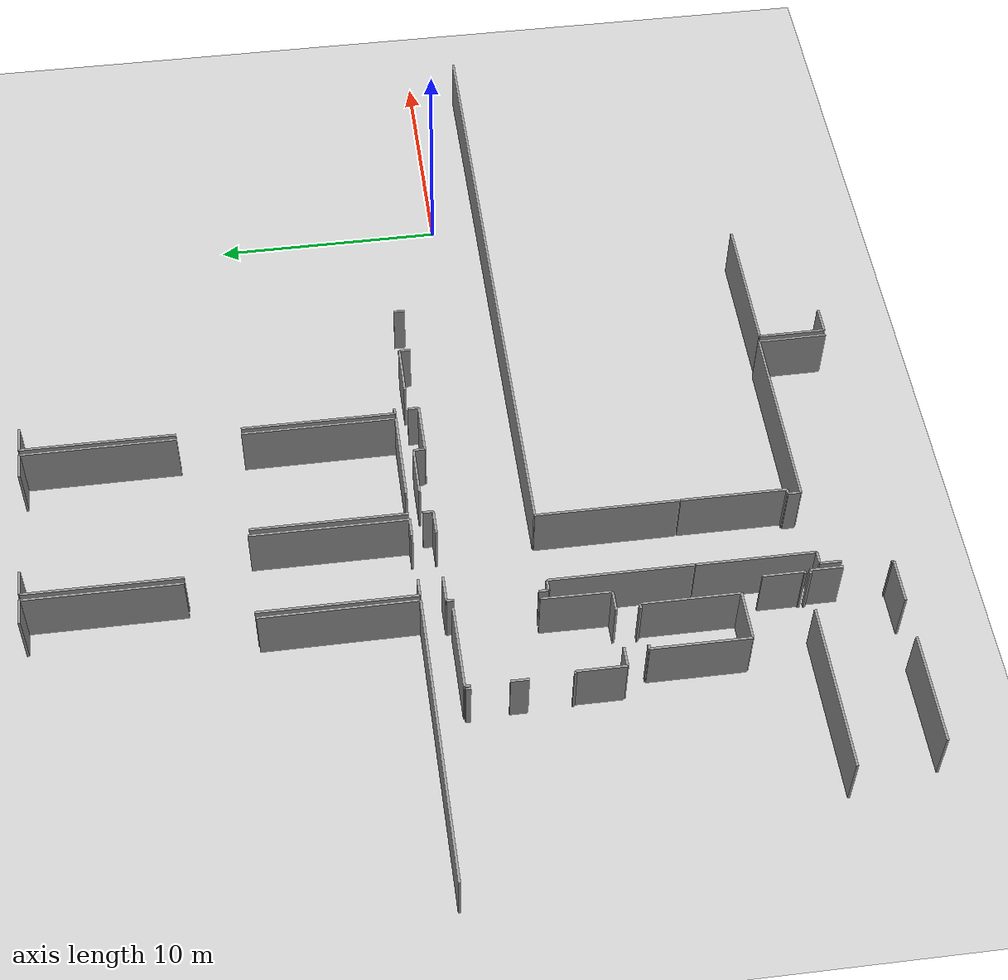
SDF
<sdf version="1.6">
 <world name="default">
  <model name="ground_plane">
   <static>1</static>
   <link name="link">
    <collision name="collision">
     <geometry><plane><normal>0 0 1</normal><size>100 100</size></plane></geometry>
     <surface><friction><ode><mu>100</mu><mu2>50</mu2></ode></friction></surface>
    </collision>
    <visual name="visual">
     <cast_shadows>0</cast_shadows>
     <geometry><plane><normal>0 0 1</normal><size>100 100</size></plane></geometry>
     <material>
      <script><uri>file://media/materials/scripts/gazebo.material</uri><name>Gazebo/Grey</name></script>
     </material>
    </visual>
   </link>
  </model>
  <model name="50045233">
   <static>1</static>
   <link name="Wall_24">
    <collision name="Wall_24_Collision">
     <geometry><box><size>6.72009136766 0.1 2.5</size></box></geometry>
     <pose>3.36004568383 0 1.25 0 0 0</pose>
    </collision>
    <visual name="Wall_24_Visual">
     <pose>3.36004568383 0 1.25 0 0 0</pose>
     <geometry><box><size>6.72009136766 0.1 2.5</size></box></geometry>
     <material>
      <script><uri>file://media/materials/scripts/gazebo.material</uri><name>Gazebo/Grey</name></script>
      <ambient>1 1 1 1</ambient>
     </material>
    </visual>
    <pose>28.5239681482 -9.3810475556 0 0 0 -1.57079632679</pose>
   </link>
   <link name="Wall_25">
    <collision name="Wall_25_Collision">
     <geometry><box><size>0.815075663843 0.1 2.5</size></box></geometry>
     <pose>0.407537831922 0 1.25 0 0 0</pose>
    </collision>
    <visual name="Wall_25_Visual">
     <pose>0.407537831922 0 1.25 0 0 0</pose>
     <geometry><box><size>0.815075663843 0.1 2.5</size></box></geometry>
     <material>
      <script><uri>file://media/materials/scripts/gazebo.material</uri><name>Gazebo/Grey</name></script>
      <ambient>1 1 1 1</ambient>
     </material>
    </visual>
    <pose>28.5239681482 -16.1011389233 0 0 0 3.14159265359</pose>
   </link>
   <link name="Wall_26">
    <collision name="Wall_26_Collision">
     <geometry><box><size>0.767615240633 0.1 2.5</size></box></geometry>
     <pose>0.383807620317 0 1.25 0 0 0</pose>
    </collision>
    <visual name="Wall_26_Visual">
     <pose>0.383807620317 0 1.25 0 0 0</pose>
     <geometry><box><size>0.767615240633 0.1 2.5</size></box></geometry>
     <material>
      <script><uri>file://media/materials/scripts/gazebo.material</uri><name>Gazebo/Grey</name></script>
      <ambient>1 1 1 1</ambient>
     </material>
    </visual>
    <pose>25.4801560864 -16.1011389233 0 0 0 3.14159265359</pose>
   </link>
   <link name="Wall_27">
    <collision name="Wall_27_Collision">
     <geometry><box><size>6.68811268678 0.1 2.5</size></box></geometry>
     <pose>3.34405634339 0 1.25 0 0 0</pose>
    </collision>
    <visual name="Wall_27_Visual">
     <pose>3.34405634339 0 1.25 0 0 0</pose>
     <geometry><box><size>6.68811268678 0.1 2.5</size></box></geometry>
     <material>
      <script><uri>file://media/materials/scripts/gazebo.material</uri><name>Gazebo/Grey</name></script>
      <ambient>1 1 1 1</ambient>
     </material>
    </visual>
    <pose>24.7125408458 -16.1011389233 0 0 0 1.57079632679</pose>
   </link>
   <link name="Wall_34">
    <collision name="Wall_34_Collision">
     <geometry><box><size>1.11151295961 0.1 2.5</size></box></geometry>
     <pose>0.555756479807 0 1.25 0 0 0</pose>
    </collision>
    <visual name="Wall_34_Visual">
     <pose>0.555756479807 0 1.25 0 0 0</pose>
     <geometry><box><size>1.11151295961 0.1 2.5</size></box></geometry>
     <material>
      <script><uri>file://media/materials/scripts/gazebo.material</uri><name>Gazebo/Grey</name></script>
      <ambient>1 1 1 1</ambient>
     </material>
    </visual>
    <pose>25.369119 -0.0153548428032 0 0 0 0.0</pose>
   </link>
   <link name="Wall_35">
    <collision name="Wall_35_Collision">
     <geometry><box><size>6.64636305243 0.1 2.5</size></box></geometry>
     <pose>3.32318152622 0 1.25 0 0 0</pose>
    </collision>
    <visual name="Wall_35_Visual">
     <pose>3.32318152622 0 1.25 0 0 0</pose>
     <geometry><box><size>6.64636305243 0.1 2.5</size></box></geometry>
     <material>
      <script><uri>file://media/materials/scripts/gazebo.material</uri><name>Gazebo/Grey</name></script>
      <ambient>1 1 1 1</ambient>
     </material>
    </visual>
    <pose>26.4806319596 -0.0153548428032 0 0 0 -1.57049083754</pose>
   </link>
   <link name="Wall_36">
    <collision name="Wall_36_Collision">
     <geometry><box><size>6.66260588179 0.1 2.5</size></box></geometry>
     <pose>3.3313029409 0 1.25 0 0 0</pose>
    </collision>
    <visual name="Wall_36_Visual">
     <pose>3.3313029409 0 1.25 0 0 0</pose>
     <geometry><box><size>6.66260588179 0.1 2.5</size></box></geometry>
     <material>
      <script><uri>file://media/materials/scripts/gazebo.material</uri><name>Gazebo/Grey</name></script>
      <ambient>1 1 1 1</ambient>
     </material>
    </visual>
    <pose>26.7620951112 -6.68747818914 0 0 0 1.57079632679</pose>
   </link>
   <link name="Wall_37">
    <collision name="Wall_37_Collision">
     <geometry><box><size>1.1068176771 0.1 2.5</size></box></geometry>
     <pose>0.553408838552 0 1.25 0 0 0</pose>
    </collision>
    <visual name="Wall_37_Visual">
     <pose>0.553408838552 0 1.25 0 0 0</pose>
     <geometry><box><size>1.1068176771 0.1 2.5</size></box></geometry>
     <material>
      <script><uri>file://media/materials/scripts/gazebo.material</uri><name>Gazebo/Grey</name></script>
      <ambient>1 1 1 1</ambient>
     </material>
    </visual>
    <pose>26.7620951112 -0.0248723073507 0 0 0 0.0</pose>
   </link>
   <link name="Wall_38">
    <collision name="Wall_38_Collision">
     <geometry><box><size>1.14970971733 0.1 2.5</size></box></geometry>
     <pose>0.574854858666 0 1.25 0 0 0</pose>
    </collision>
    <visual name="Wall_38_Visual">
     <pose>0.574854858666 0 1.25 0 0 0</pose>
     <geometry><box><size>1.14970971733 0.1 2.5</size></box></geometry>
     <material>
      <script><uri>file://media/materials/scripts/gazebo.material</uri><name>Gazebo/Grey</name></script>
      <ambient>1 1 1 1</ambient>
     </material>
    </visual>
    <pose>32.7683766378 -0.0248723073507 0 0 0 0.0</pose>
   </link>
   <link name="Wall_39">
    <collision name="Wall_39_Collision">
     <geometry><box><size>6.66267148961 0.1 2.5</size></box></geometry>
     <pose>3.33133574481 0 1.25 0 0 0</pose>
    </collision>
    <visual name="Wall_39_Visual">
     <pose>3.33133574481 0 1.25 0 0 0</pose>
     <geometry><box><size>6.66267148961 0.1 2.5</size></box></geometry>
     <material>
      <script><uri>file://media/materials/scripts/gazebo.material</uri><name>Gazebo/Grey</name></script>
      <ambient>1 1 1 1</ambient>
     </material>
    </visual>
    <pose>33.9180863551 -0.0248723073507 0 0 0 -1.56635851428</pose>
   </link>
   <link name="Wall_40">
    <collision name="Wall_40_Collision">
     <geometry><box><size>6.66019479077 0.1 2.5</size></box></geometry>
     <pose>3.33009739539 0 1.25 0 0 0</pose>
    </collision>
    <visual name="Wall_40_Visual">
     <pose>3.33009739539 0 1.25 0 0 0</pose>
     <geometry><box><size>6.66019479077 0.1 2.5</size></box></geometry>
     <material>
      <script><uri>file://media/materials/scripts/gazebo.material</uri><name>Gazebo/Grey</name></script>
      <ambient>1 1 1 1</ambient>
     </material>
    </visual>
    <pose>34.1938390279 -6.67593033216 0 0 0 1.57079632679</pose>
   </link>
   <link name="Wall_41">
    <collision name="Wall_41_Collision">
     <geometry><box><size>1.11874623267 0.1 2.5</size></box></geometry>
     <pose>0.559373116335 0 1.25 0 0 0</pose>
    </collision>
    <visual name="Wall_41_Visual">
     <pose>0.559373116335 0 1.25 0 0 0</pose>
     <geometry><box><size>1.11874623267 0.1 2.5</size></box></geometry>
     <material>
      <script><uri>file://media/materials/scripts/gazebo.material</uri><name>Gazebo/Grey</name></script>
      <ambient>1 1 1 1</ambient>
     </material>
    </visual>
    <pose>34.1938390279 -0.0157355413851 0 0 0 0.0</pose>
   </link>
   <link name="Wall_99">
    <collision name="Wall_99_Collision">
     <geometry><box><size>0.250245867834 0.1 2.5</size></box></geometry>
     <pose>0.125122933917 0 1.25 0 0 0</pose>
    </collision>
    <visual name="Wall_99_Visual">
     <pose>0.125122933917 0 1.25 0 0 0</pose>
     <geometry><box><size>0.250245867834 0.1 2.5</size></box></geometry>
     <material>
      <script><uri>file://media/materials/scripts/gazebo.material</uri><name>Gazebo/Grey</name></script>
      <ambient>1 1 1 1</ambient>
     </material>
    </visual>
    <pose>34.4397703119 -16.0960629422 0 0 0 3.14159265359</pose>
   </link>
   <link name="Wall_100">
    <collision name="Wall_100_Collision">
     <geometry><box><size>6.63963706735 0.1 2.5</size></box></geometry>
     <pose>3.31981853368 0 1.25 0 0 0</pose>
    </collision>
    <visual name="Wall_100_Visual">
     <pose>3.31981853368 0 1.25 0 0 0</pose>
     <geometry><box><size>6.63963706735 0.1 2.5</size></box></geometry>
     <material>
      <script><uri>file://media/materials/scripts/gazebo.material</uri><name>Gazebo/Grey</name></script>
      <ambient>1 1 1 1</ambient>
     </material>
    </visual>
    <pose>34.189524444 -16.0960629422 0 0 0 1.57079632679</pose>
   </link>
   <link name="Wall_102">
    <collision name="Wall_102_Collision">
     <geometry><box><size>4.03261317852 0.1 2.5</size></box></geometry>
     <pose>2.01630658926 0 1.25 0 0 0</pose>
    </collision>
    <visual name="Wall_102_Visual">
     <pose>2.01630658926 0 1.25 0 0 0</pose>
     <geometry><box><size>4.03261317852 0.1 2.5</size></box></geometry>
     <material>
      <script><uri>file://media/materials/scripts/gazebo.material</uri><name>Gazebo/Grey</name></script>
      <ambient>1 1 1 1</ambient>
     </material>
    </visual>
    <pose>33.9194822499 -16.1016465214 0 0 0 3.14159265359</pose>
   </link>
   <link name="Wall_103">
    <collision name="Wall_103_Collision">
     <geometry><box><size>6.65093112528 0.1 2.5</size></box></geometry>
     <pose>3.32546556264 0 1.25 0 0 0</pose>
    </collision>
    <visual name="Wall_103_Visual">
     <pose>3.32546556264 0 1.25 0 0 0</pose>
     <geometry><box><size>6.65093112528 0.1 2.5</size></box></geometry>
     <material>
      <script><uri>file://media/materials/scripts/gazebo.material</uri><name>Gazebo/Grey</name></script>
      <ambient>1 1 1 1</ambient>
     </material>
    </visual>
    <pose>28.8277656166 -16.1016465214 0 0 0 1.57079632679</pose>
   </link>
   <link name="Wall_104">
    <collision name="Wall_104_Collision">
     <geometry><box><size>6.65094685847 0.1 2.5</size></box></geometry>
     <pose>3.32547342924 0 1.25 0 0 0</pose>
    </collision>
    <visual name="Wall_104_Visual">
     <pose>3.32547342924 0 1.25 0 0 0</pose>
     <geometry><box><size>6.65094685847 0.1 2.5</size></box></geometry>
     <material>
      <script><uri>file://media/materials/scripts/gazebo.material</uri><name>Gazebo/Grey</name></script>
      <ambient>1 1 1 1</ambient>
     </material>
    </visual>
    <pose>33.9050157038 -9.45071539609 0 0 0 -1.56862121431</pose>
   </link>
   <link name="Wall_105">
    <collision name="Wall_105_Collision">
     <geometry><box><size>12.5843723232 0.1 2.5</size></box></geometry>
     <pose>6.29218616161 0 1.25 0 0 0</pose>
    </collision>
    <visual name="Wall_105_Visual">
     <pose>6.29218616161 0 1.25 0 0 0</pose>
     <geometry><box><size>12.5843723232 0.1 2.5</size></box></geometry>
     <material>
      <script><uri>file://media/materials/scripts/gazebo.material</uri><name>Gazebo/Grey</name></script>
      <ambient>1 1 1 1</ambient>
     </material>
    </visual>
    <pose>24.4822182037 -16.1011389233 0 0 0 3.14159265359</pose>
   </link>
   <link name="Wall_107">
    <collision name="Wall_107_Collision">
     <geometry><box><size>6.64418401277 0.1 2.5</size></box></geometry>
     <pose>3.32209200638 0 1.25 0 0 0</pose>
    </collision>
    <visual name="Wall_107_Visual">
     <pose>3.32209200638 0 1.25 0 0 0</pose>
     <geometry><box><size>6.64418401277 0.1 2.5</size></box></geometry>
     <material>
      <script><uri>file://media/materials/scripts/gazebo.material</uri><name>Gazebo/Grey</name></script>
      <ambient>1 1 1 1</ambient>
     </material>
    </visual>
    <pose>24.4447828432 -9.45706037245 0 0 0 -1.56516199178</pose>
   </link>
   <link name="Wall_162">
    <collision name="Wall_162_Collision">
     <geometry><box><size>0.176771041528 0.1 2.5</size></box></geometry>
     <pose>0.0883855207639 0 1.25 0 0 0</pose>
    </collision>
    <visual name="Wall_162_Visual">
     <pose>0.0883855207639 0 1.25 0 0 0</pose>
     <geometry><box><size>0.176771041528 0.1 2.5</size></box></geometry>
     <material>
      <script><uri>file://media/materials/scripts/gazebo.material</uri><name>Gazebo/Grey</name></script>
      <ambient>1 1 1 1</ambient>
     </material>
    </visual>
    <pose>23.7904888804 -32.0281716951 0 0 0 0.0</pose>
   </link>
   <link name="Wall_163">
    <collision name="Wall_163_Collision">
     <geometry><box><size>1.39094571873 0.1 2.5</size></box></geometry>
     <pose>0.695472859364 0 1.25 0 0 0</pose>
    </collision>
    <visual name="Wall_163_Visual">
     <pose>0.695472859364 0 1.25 0 0 0</pose>
     <geometry><box><size>1.39094571873 0.1 2.5</size></box></geometry>
     <material>
      <script><uri>file://media/materials/scripts/gazebo.material</uri><name>Gazebo/Grey</name></script>
      <ambient>1 1 1 1</ambient>
     </material>
    </visual>
    <pose>23.967259922 -32.0281716951 0 0 0 -1.57079632679</pose>
   </link>
   <link name="Wall_164">
    <collision name="Wall_164_Collision">
     <geometry><box><size>0.0944132483107 0.1 2.5</size></box></geometry>
     <pose>0.0472066241553 0 1.25 0 0 0</pose>
    </collision>
    <visual name="Wall_164_Visual">
     <pose>0.0472066241553 0 1.25 0 0 0</pose>
     <geometry><box><size>0.0944132483107 0.1 2.5</size></box></geometry>
     <material>
      <script><uri>file://media/materials/scripts/gazebo.material</uri><name>Gazebo/Grey</name></script>
      <ambient>1 1 1 1</ambient>
     </material>
    </visual>
    <pose>23.967259922 -35.4298404238 0 0 0 -1.57079632679</pose>
   </link>
   <link name="Wall_165">
    <collision name="Wall_165_Collision">
     <geometry><box><size>1.93953237524 0.1 2.5</size></box></geometry>
     <pose>0.969766187621 0 1.25 0 0 0</pose>
    </collision>
    <visual name="Wall_165_Visual">
     <pose>0.969766187621 0 1.25 0 0 0</pose>
     <geometry><box><size>1.93953237524 0.1 2.5</size></box></geometry>
     <material>
      <script><uri>file://media/materials/scripts/gazebo.material</uri><name>Gazebo/Grey</name></script>
      <ambient>1 1 1 1</ambient>
     </material>
    </visual>
    <pose>23.967259922 -35.5242536722 0 0 0 3.14159265359</pose>
   </link>
   <link name="Wall_166">
    <collision name="Wall_166_Collision">
     <geometry><box><size>4.74782065096 0.1 2.5</size></box></geometry>
     <pose>2.37391032548 0 1.25 0 0 0</pose>
    </collision>
    <visual name="Wall_166_Visual">
     <pose>2.37391032548 0 1.25 0 0 0</pose>
     <geometry><box><size>4.74782065096 0.1 2.5</size></box></geometry>
     <material>
      <script><uri>file://media/materials/scripts/gazebo.material</uri><name>Gazebo/Grey</name></script>
      <ambient>1 1 1 1</ambient>
     </material>
    </visual>
    <pose>20.271945687 -35.5242536722 0 0 0 -3.14073735899</pose>
   </link>
   <link name="Wall_167">
    <collision name="Wall_167_Collision">
     <geometry><box><size>7.19558389645 0.1 2.5</size></box></geometry>
     <pose>3.59779194822 0 1.25 0 0 0</pose>
    </collision>
    <visual name="Wall_167_Visual">
     <pose>3.59779194822 0 1.25 0 0 0</pose>
     <geometry><box><size>7.19558389645 0.1 2.5</size></box></geometry>
     <material>
      <script><uri>file://media/materials/scripts/gazebo.material</uri><name>Gazebo/Grey</name></script>
      <ambient>1 1 1 1</ambient>
     </material>
    </visual>
    <pose>22.0439706862 -31.8021636369 0 0 0 3.14159265359</pose>
   </link>
   <link name="Wall_170">
    <collision name="Wall_170_Collision">
     <geometry><box><size>1.74804098855 0.1 2.5</size></box></geometry>
     <pose>0.874020494274 0 1.25 0 0 0</pose>
    </collision>
    <visual name="Wall_170_Visual">
     <pose>0.874020494274 0 1.25 0 0 0</pose>
     <geometry><box><size>1.74804098855 0.1 2.5</size></box></geometry>
     <material>
      <script><uri>file://media/materials/scripts/gazebo.material</uri><name>Gazebo/Grey</name></script>
      <ambient>1 1 1 1</ambient>
     </material>
    </visual>
    <pose>23.9181498049 -30.0386409061 0 0 0 -1.57079632679</pose>
   </link>
   <link name="Wall_171">
    <collision name="Wall_171_Collision">
     <geometry><box><size>0.106709449569 0.1 2.5</size></box></geometry>
     <pose>0.0533547247844 0 1.25 0 0 0</pose>
    </collision>
    <visual name="Wall_171_Visual">
     <pose>0.0533547247844 0 1.25 0 0 0</pose>
     <geometry><box><size>0.106709449569 0.1 2.5</size></box></geometry>
     <material>
      <script><uri>file://media/materials/scripts/gazebo.material</uri><name>Gazebo/Grey</name></script>
      <ambient>1 1 1 1</ambient>
     </material>
    </visual>
    <pose>23.9181498049 -31.7866818946 0 0 0 -2.99599564951</pose>
   </link>
   <link name="Wall_191">
    <collision name="Wall_191_Collision">
     <geometry><box><size>4.18019732876 0.1 2.5</size></box></geometry>
     <pose>2.09009866438 0 1.25 0 0 0</pose>
    </collision>
    <visual name="Wall_191_Visual">
     <pose>2.09009866438 0 1.25 0 0 0</pose>
     <geometry><box><size>4.18019732876 0.1 2.5</size></box></geometry>
     <material>
      <script><uri>file://media/materials/scripts/gazebo.material</uri><name>Gazebo/Grey</name></script>
      <ambient>1 1 1 1</ambient>
     </material>
    </visual>
    <pose>21.048316995 -29.0377843343 0 0 0 1.57079632679</pose>
   </link>
   <link name="Wall_192">
    <collision name="Wall_192_Collision">
     <geometry><box><size>0.181593223565 0.1 2.5</size></box></geometry>
     <pose>0.0907966117826 0 1.25 0 0 0</pose>
    </collision>
    <visual name="Wall_192_Visual">
     <pose>0.0907966117826 0 1.25 0 0 0</pose>
     <geometry><box><size>0.181593223565 0.1 2.5</size></box></geometry>
     <material>
      <script><uri>file://media/materials/scripts/gazebo.material</uri><name>Gazebo/Grey</name></script>
      <ambient>1 1 1 1</ambient>
     </material>
    </visual>
    <pose>21.048316995 -24.8575870055 0 0 0 0.0</pose>
   </link>
   <link name="Wall_193">
    <collision name="Wall_193_Collision">
     <geometry><box><size>0.225246660956 0.1 2.5</size></box></geometry>
     <pose>0.112623330478 0 1.25 0 0 0</pose>
    </collision>
    <visual name="Wall_193_Visual">
     <pose>0.112623330478 0 1.25 0 0 0</pose>
     <geometry><box><size>0.225246660956 0.1 2.5</size></box></geometry>
     <material>
      <script><uri>file://media/materials/scripts/gazebo.material</uri><name>Gazebo/Grey</name></script>
      <ambient>1 1 1 1</ambient>
     </material>
    </visual>
    <pose>22.9836616859 -24.8575870055 0 0 0 0.0</pose>
   </link>
   <link name="Wall_194">
    <collision name="Wall_194_Collision">
     <geometry><box><size>4.16560388313 0.1 2.5</size></box></geometry>
     <pose>2.08280194156 0 1.25 0 0 0</pose>
    </collision>
    <visual name="Wall_194_Visual">
     <pose>2.08280194156 0 1.25 0 0 0</pose>
     <geometry><box><size>4.16560388313 0.1 2.5</size></box></geometry>
     <material>
      <script><uri>file://media/materials/scripts/gazebo.material</uri><name>Gazebo/Grey</name></script>
      <ambient>1 1 1 1</ambient>
     </material>
    </visual>
    <pose>23.2089083468 -24.8575870055 0 0 0 -1.57079632679</pose>
   </link>
   <link name="Wall_195">
    <collision name="Wall_195_Collision">
     <geometry><box><size>2.16064063604 0.1 2.5</size></box></geometry>
     <pose>1.08032031802 0 1.25 0 0 0</pose>
    </collision>
    <visual name="Wall_195_Visual">
     <pose>1.08032031802 0 1.25 0 0 0</pose>
     <geometry><box><size>2.16064063604 0.1 2.5</size></box></geometry>
     <material>
      <script><uri>file://media/materials/scripts/gazebo.material</uri><name>Gazebo/Grey</name></script>
      <ambient>1 1 1 1</ambient>
     </material>
    </visual>
    <pose>23.2089083468 -29.0231908886 0 0 0 -3.13483838064</pose>
   </link>
   <link name="Wall_196">
    <collision name="Wall_196_Collision">
     <geometry><box><size>0.887915992513 0.1 2.5</size></box></geometry>
     <pose>0.443957996256 0 1.25 0 0 0</pose>
    </collision>
    <visual name="Wall_196_Visual">
     <pose>0.443957996256 0 1.25 0 0 0</pose>
     <geometry><box><size>0.887915992513 0.1 2.5</size></box></geometry>
     <material>
      <script><uri>file://media/materials/scripts/gazebo.material</uri><name>Gazebo/Grey</name></script>
      <ambient>1 1 1 1</ambient>
     </material>
    </visual>
    <pose>23.9170077091 -23.8576187304 0 0 0 3.14159265359</pose>
   </link>
   <link name="Wall_197">
    <collision name="Wall_197_Collision">
     <geometry><box><size>0.873195647346 0.1 2.5</size></box></geometry>
     <pose>0.436597823673 0 1.25 0 0 0</pose>
    </collision>
    <visual name="Wall_197_Visual">
     <pose>0.436597823673 0 1.25 0 0 0</pose>
     <geometry><box><size>0.873195647346 0.1 2.5</size></box></geometry>
     <material>
      <script><uri>file://media/materials/scripts/gazebo.material</uri><name>Gazebo/Grey</name></script>
      <ambient>1 1 1 1</ambient>
     </material>
    </visual>
    <pose>21.2485644491 -23.8576187304 0 0 0 3.14159265359</pose>
   </link>
   <link name="Wall_198">
    <collision name="Wall_198_Collision">
     <geometry><box><size>2.08559373116 0.1 2.5</size></box></geometry>
     <pose>1.04279686558 0 1.25 0 0 0</pose>
    </collision>
    <visual name="Wall_198_Visual">
     <pose>1.04279686558 0 1.25 0 0 0</pose>
     <geometry><box><size>2.08559373116 0.1 2.5</size></box></geometry>
     <material>
      <script><uri>file://media/materials/scripts/gazebo.material</uri><name>Gazebo/Grey</name></script>
      <ambient>1 1 1 1</ambient>
     </material>
    </visual>
    <pose>20.3753688018 -23.8576187304 0 0 0 1.57079632679</pose>
   </link>
   <link name="Wall_199">
    <collision name="Wall_199_Collision">
     <geometry><box><size>0.128422321627 0.1 2.5</size></box></geometry>
     <pose>0.0642111608134 0 1.25 0 0 0</pose>
    </collision>
    <visual name="Wall_199_Visual">
     <pose>0.0642111608134 0 1.25 0 0 0</pose>
     <geometry><box><size>0.128422321627 0.1 2.5</size></box></geometry>
     <material>
      <script><uri>file://media/materials/scripts/gazebo.material</uri><name>Gazebo/Grey</name></script>
      <ambient>1 1 1 1</ambient>
     </material>
    </visual>
    <pose>20.3753688018 -21.7720249992 0 0 0 3.14159265359</pose>
   </link>
   <link name="Wall_200">
    <collision name="Wall_200_Collision">
     <geometry><box><size>0.754544589321 0.1 2.5</size></box></geometry>
     <pose>0.377272294661 0 1.25 0 0 0</pose>
    </collision>
    <visual name="Wall_200_Visual">
     <pose>0.377272294661 0 1.25 0 0 0</pose>
     <geometry><box><size>0.754544589321 0.1 2.5</size></box></geometry>
     <material>
      <script><uri>file://media/materials/scripts/gazebo.material</uri><name>Gazebo/Grey</name></script>
      <ambient>1 1 1 1</ambient>
     </material>
    </visual>
    <pose>20.2469464801 -19.9175153073 0 0 0 1.57079632679</pose>
   </link>
   <link name="Wall_201">
    <collision name="Wall_201_Collision">
     <geometry><box><size>0.24669268107 0.1 2.5</size></box></geometry>
     <pose>0.123346340535 0 1.25 0 0 0</pose>
    </collision>
    <visual name="Wall_201_Visual">
     <pose>0.123346340535 0 1.25 0 0 0</pose>
     <geometry><box><size>0.24669268107 0.1 2.5</size></box></geometry>
     <material>
      <script><uri>file://media/materials/scripts/gazebo.material</uri><name>Gazebo/Grey</name></script>
      <ambient>1 1 1 1</ambient>
     </material>
    </visual>
    <pose>20.2469464801 -17.5957615558 0 0 0 1.57079632679</pose>
   </link>
   <link name="Wall_202">
    <collision name="Wall_202_Collision">
     <geometry><box><size>3.70318200565 0.1 2.5</size></box></geometry>
     <pose>1.85159100282 0 1.25 0 0 0</pose>
    </collision>
    <visual name="Wall_202_Visual">
     <pose>1.85159100282 0 1.25 0 0 0</pose>
     <geometry><box><size>3.70318200565 0.1 2.5</size></box></geometry>
     <material>
      <script><uri>file://media/materials/scripts/gazebo.material</uri><name>Gazebo/Grey</name></script>
      <ambient>1 1 1 1</ambient>
     </material>
    </visual>
    <pose>20.2469464801 -17.3490688747 0 0 0 0.0</pose>
   </link>
   <link name="Wall_203">
    <collision name="Wall_203_Collision">
     <geometry><box><size>2.96861851203 0.1 2.5</size></box></geometry>
     <pose>1.48430925601 0 1.25 0 0 0</pose>
    </collision>
    <visual name="Wall_203_Visual">
     <pose>1.48430925601 0 1.25 0 0 0</pose>
     <geometry><box><size>2.96861851203 0.1 2.5</size></box></geometry>
     <material>
      <script><uri>file://media/materials/scripts/gazebo.material</uri><name>Gazebo/Grey</name></script>
      <ambient>1 1 1 1</ambient>
     </material>
    </visual>
    <pose>23.9501284858 -20.8891849878 0 0 0 -1.58195352455</pose>
   </link>
   <link name="Wall_208">
    <collision name="Wall_208_Collision">
     <geometry><box><size>0.2194092827 0.1 2.5</size></box></geometry>
     <pose>0.10970464135 0 1.25 0 0 0</pose>
    </collision>
    <visual name="Wall_208_Visual">
     <pose>0.10970464135 0 1.25 0 0 0</pose>
     <geometry><box><size>0.2194092827 0.1 2.5</size></box></geometry>
     <material>
      <script><uri>file://media/materials/scripts/gazebo.material</uri><name>Gazebo/Grey</name></script>
      <ambient>1 1 1 1</ambient>
     </material>
    </visual>
    <pose>20.1106563878 -17.3689921005 0 0 0 -1.57079632679</pose>
   </link>
   <link name="Wall_312">
    <collision name="Wall_312_Collision">
     <geometry><box><size>6.10272516735 0.1 2.5</size></box></geometry>
     <pose>3.05136258367 0 1.25 0 0 0</pose>
    </collision>
    <visual name="Wall_312_Visual">
     <pose>3.05136258367 0 1.25 0 0 0</pose>
     <geometry><box><size>6.10272516735 0.1 2.5</size></box></geometry>
     <material>
      <script><uri>file://media/materials/scripts/gazebo.material</uri><name>Gazebo/Grey</name></script>
      <ambient>1 1 1 1</ambient>
     </material>
    </visual>
    <pose>28.0900986644 -27.3852986898 0 0 0 1.57079632679</pose>
   </link>
   <link name="Wall_313">
    <collision name="Wall_313_Collision">
     <geometry><box><size>27.6017892833 0.1 2.5</size></box></geometry>
     <pose>13.8008946417 0 1.25 0 0 0</pose>
    </collision>
    <visual name="Wall_313_Visual">
     <pose>13.8008946417 0 1.25 0 0 0</pose>
     <geometry><box><size>27.6017892833 0.1 2.5</size></box></geometry>
     <material>
      <script><uri>file://media/materials/scripts/gazebo.material</uri><name>Gazebo/Grey</name></script>
      <ambient>1 1 1 1</ambient>
     </material>
    </visual>
    <pose>28.0900986644 -21.2825735224 0 0 0 0.0</pose>
   </link>
   <link name="Wall_345">
    <collision name="Wall_345_Collision">
     <geometry><box><size>0.482598902319 0.1 2.5</size></box></geometry>
     <pose>0.24129945116 0 1.25 0 0 0</pose>
    </collision>
    <visual name="Wall_345_Visual">
     <pose>0.24129945116 0 1.25 0 0 0</pose>
     <geometry><box><size>0.482598902319 0.1 2.5</size></box></geometry>
     <material>
      <script><uri>file://media/materials/scripts/gazebo.material</uri><name>Gazebo/Grey</name></script>
      <ambient>1 1 1 1</ambient>
     </material>
    </visual>
    <pose>39.9923860284 -16.6526442689 0 0 0 -1.57079632679</pose>
   </link>
   <link name="Wall_347">
    <collision name="Wall_347_Collision">
     <geometry><box><size>0.473208337299 0.1 2.5</size></box></geometry>
     <pose>0.236604168649 0 1.25 0 0 0</pose>
    </collision>
    <visual name="Wall_347_Visual">
     <pose>0.236604168649 0 1.25 0 0 0</pose>
     <geometry><box><size>0.473208337299 0.1 2.5</size></box></geometry>
     <material>
      <script><uri>file://media/materials/scripts/gazebo.material</uri><name>Gazebo/Grey</name></script>
      <ambient>1 1 1 1</ambient>
     </material>
    </visual>
    <pose>37.6833222296 -17.1352431712 0 0 0 1.57079632679</pose>
   </link>
   <link name="Wall_348">
    <collision name="Wall_348_Collision">
     <geometry><box><size>2.22086862726 0.1 2.5</size></box></geometry>
     <pose>1.11043431363 0 1.25 0 0 0</pose>
    </collision>
    <visual name="Wall_348_Visual">
     <pose>1.11043431363 0 1.25 0 0 0</pose>
     <geometry><box><size>2.22086862726 0.1 2.5</size></box></geometry>
     <material>
      <script><uri>file://media/materials/scripts/gazebo.material</uri><name>Gazebo/Grey</name></script>
      <ambient>1 1 1 1</ambient>
     </material>
    </visual>
    <pose>37.6833222296 -16.6620348339 0 0 0 3.14159265359</pose>
   </link>
   <link name="Wall_349">
    <collision name="Wall_349_Collision">
     <geometry><box><size>0.485771390502 0.1 2.5</size></box></geometry>
     <pose>0.242885695251 0 1.25 0 0 0</pose>
    </collision>
    <visual name="Wall_349_Visual">
     <pose>0.242885695251 0 1.25 0 0 0</pose>
     <geometry><box><size>0.485771390502 0.1 2.5</size></box></geometry>
     <material>
      <script><uri>file://media/materials/scripts/gazebo.material</uri><name>Gazebo/Grey</name></script>
      <ambient>1 1 1 1</ambient>
     </material>
    </visual>
    <pose>34.3709907681 -16.6620348339 0 0 0 -1.57079632679</pose>
   </link>
   <link name="Wall_350">
    <collision name="Wall_350_Collision">
     <geometry><box><size>2.26502966276 0.1 2.5</size></box></geometry>
     <pose>1.13251483138 0 1.25 0 0 0</pose>
    </collision>
    <visual name="Wall_350_Visual">
     <pose>1.13251483138 0 1.25 0 0 0</pose>
     <geometry><box><size>2.26502966276 0.1 2.5</size></box></geometry>
     <material>
      <script><uri>file://media/materials/scripts/gazebo.material</uri><name>Gazebo/Grey</name></script>
      <ambient>1 1 1 1</ambient>
     </material>
    </visual>
    <pose>34.3709907681 -17.1478062244 0 0 0 3.14159265359</pose>
   </link>
   <link name="Wall_351">
    <collision name="Wall_351_Collision">
     <geometry><box><size>0.479426414137 0.1 2.5</size></box></geometry>
     <pose>0.239713207068 0 1.25 0 0 0</pose>
    </collision>
    <visual name="Wall_351_Visual">
     <pose>0.239713207068 0 1.25 0 0 0</pose>
     <geometry><box><size>0.479426414137 0.1 2.5</size></box></geometry>
     <material>
      <script><uri>file://media/materials/scripts/gazebo.material</uri><name>Gazebo/Grey</name></script>
      <ambient>1 1 1 1</ambient>
     </material>
    </visual>
    <pose>32.1059611053 -17.1478062244 0 0 0 1.57079632679</pose>
   </link>
   <link name="Wall_352">
    <collision name="Wall_352_Collision">
     <geometry><box><size>2.2145236509 0.1 2.5</size></box></geometry>
     <pose>1.10726182545 0 1.25 0 0 0</pose>
    </collision>
    <visual name="Wall_352_Visual">
     <pose>1.10726182545 0 1.25 0 0 0</pose>
     <geometry><box><size>2.2145236509 0.1 2.5</size></box></geometry>
     <material>
      <script><uri>file://media/materials/scripts/gazebo.material</uri><name>Gazebo/Grey</name></script>
      <ambient>1 1 1 1</ambient>
     </material>
    </visual>
    <pose>32.1059611053 -16.6683798103 0 0 0 3.14159265359</pose>
   </link>
   <link name="Wall_353">
    <collision name="Wall_353_Collision">
     <geometry><box><size>0.454300307731 0.1 2.5</size></box></geometry>
     <pose>0.227150153866 0 1.25 0 0 0</pose>
    </collision>
    <visual name="Wall_353_Visual">
     <pose>0.227150153866 0 1.25 0 0 0</pose>
     <geometry><box><size>0.454300307731 0.1 2.5</size></box></geometry>
     <material>
      <script><uri>file://media/materials/scripts/gazebo.material</uri><name>Gazebo/Grey</name></script>
      <ambient>1 1 1 1</ambient>
     </material>
    </visual>
    <pose>28.8063195965 -16.6683798103 0 0 0 -1.57079632679</pose>
   </link>
   <link name="Wall_354">
    <collision name="Wall_354_Collision">
     <geometry><box><size>1.0914628343 0.1 2.5</size></box></geometry>
     <pose>0.54573141715 0 1.25 0 0 0</pose>
    </collision>
    <visual name="Wall_354_Visual">
     <pose>0.54573141715 0 1.25 0 0 0</pose>
     <geometry><box><size>1.0914628343 0.1 2.5</size></box></geometry>
     <material>
      <script><uri>file://media/materials/scripts/gazebo.material</uri><name>Gazebo/Grey</name></script>
      <ambient>1 1 1 1</ambient>
     </material>
    </visual>
    <pose>28.8063195965 -17.122680118 0 0 0 3.14159265359</pose>
   </link>
   <link name="Wall_355">
    <collision name="Wall_355_Collision">
     <geometry><box><size>1.18067320199 0.1 2.5</size></box></geometry>
     <pose>0.590336600996 0 1.25 0 0 0</pose>
    </collision>
    <visual name="Wall_355_Visual">
     <pose>0.590336600996 0 1.25 0 0 0</pose>
     <geometry><box><size>1.18067320199 0.1 2.5</size></box></geometry>
     <material>
      <script><uri>file://media/materials/scripts/gazebo.material</uri><name>Gazebo/Grey</name></script>
      <ambient>1 1 1 1</ambient>
     </material>
    </visual>
    <pose>25.4950033311 -17.122680118 0 0 0 3.14159265359</pose>
   </link>
   <link name="Wall_356">
    <collision name="Wall_356_Collision">
     <geometry><box><size>0.312680435265 0.1 2.5</size></box></geometry>
     <pose>0.156340217633 0 1.25 0 0 0</pose>
    </collision>
    <visual name="Wall_356_Visual">
     <pose>0.156340217633 0 1.25 0 0 0</pose>
     <geometry><box><size>0.312680435265 0.1 2.5</size></box></geometry>
     <material>
      <script><uri>file://media/materials/scripts/gazebo.material</uri><name>Gazebo/Grey</name></script>
      <ambient>1 1 1 1</ambient>
     </material>
    </visual>
    <pose>24.3143301291 -17.122680118 0 0 0 -1.57079632679</pose>
   </link>
   <link name="Wall_357">
    <collision name="Wall_357_Collision">
     <geometry><box><size>0.417118746233 0.1 2.5</size></box></geometry>
     <pose>0.208559373116 0 1.25 0 0 0</pose>
    </collision>
    <visual name="Wall_357_Visual">
     <pose>0.208559373116 0 1.25 0 0 0</pose>
     <geometry><box><size>0.417118746233 0.1 2.5</size></box></geometry>
     <material>
      <script><uri>file://media/materials/scripts/gazebo.material</uri><name>Gazebo/Grey</name></script>
      <ambient>1 1 1 1</ambient>
     </material>
    </visual>
    <pose>24.3143301291 -20.8855049015 0 0 0 -1.57079632679</pose>
   </link>
   <link name="Wall_358">
    <collision name="Wall_358_Collision">
     <geometry><box><size>0.488309381048 0.1 2.5</size></box></geometry>
     <pose>0.244154690524 0 1.25 0 0 0</pose>
    </collision>
    <visual name="Wall_358_Visual">
     <pose>0.244154690524 0 1.25 0 0 0</pose>
     <geometry><box><size>0.488309381048 0.1 2.5</size></box></geometry>
     <material>
      <script><uri>file://media/materials/scripts/gazebo.material</uri><name>Gazebo/Grey</name></script>
      <ambient>1 1 1 1</ambient>
     </material>
    </visual>
    <pose>24.3143301291 -21.3026236477 0 0 0 0.0</pose>
   </link>
   <link name="Wall_359">
    <collision name="Wall_359_Collision">
     <geometry><box><size>6.08267784302 0.1 2.5</size></box></geometry>
     <pose>3.04133892151 0 1.25 0 0 0</pose>
    </collision>
    <visual name="Wall_359_Visual">
     <pose>3.04133892151 0 1.25 0 0 0</pose>
     <geometry><box><size>6.08267784302 0.1 2.5</size></box></geometry>
     <material>
      <script><uri>file://media/materials/scripts/gazebo.material</uri><name>Gazebo/Grey</name></script>
      <ambient>1 1 1 1</ambient>
     </material>
    </visual>
    <pose>24.8026395102 -21.3026236477 0 0 0 -1.56983665421</pose>
   </link>
   <link name="Wall_363">
    <collision name="Wall_363_Collision">
     <geometry><box><size>0.910504108372 0.1 2.5</size></box></geometry>
     <pose>0.455252054186 0 1.25 0 0 0</pose>
    </collision>
    <visual name="Wall_363_Visual">
     <pose>0.455252054186 0 1.25 0 0 0</pose>
     <geometry><box><size>0.910504108372 0.1 2.5</size></box></geometry>
     <material>
      <script><uri>file://media/materials/scripts/gazebo.material</uri><name>Gazebo/Grey</name></script>
      <ambient>1 1 1 1</ambient>
     </material>
    </visual>
    <pose>24.2423780971 -33.4059198629 0 0 0 1.57079632679</pose>
   </link>
   <link name="Wall_364">
    <collision name="Wall_364_Collision">
     <geometry><box><size>0.565083595064 0.1 2.5</size></box></geometry>
     <pose>0.282541797532 0 1.25 0 0 0</pose>
    </collision>
    <visual name="Wall_364_Visual">
     <pose>0.282541797532 0 1.25 0 0 0</pose>
     <geometry><box><size>0.565083595064 0.1 2.5</size></box></geometry>
     <material>
      <script><uri>file://media/materials/scripts/gazebo.material</uri><name>Gazebo/Grey</name></script>
      <ambient>1 1 1 1</ambient>
     </material>
    </visual>
    <pose>24.2423780971 -32.4954157546 0 0 0 0.0</pose>
   </link>
   <link name="Wall_365">
    <collision name="Wall_365_Collision">
     <geometry><box><size>5.05098188509 0.1 2.5</size></box></geometry>
     <pose>2.52549094255 0 1.25 0 0 0</pose>
    </collision>
    <visual name="Wall_365_Visual">
     <pose>2.52549094255 0 1.25 0 0 0</pose>
     <geometry><box><size>5.05098188509 0.1 2.5</size></box></geometry>
     <material>
      <script><uri>file://media/materials/scripts/gazebo.material</uri><name>Gazebo/Grey</name></script>
      <ambient>1 1 1 1</ambient>
     </material>
    </visual>
    <pose>24.8074616922 -32.4954157546 0 0 0 1.57079632679</pose>
   </link>
   <link name="Wall_366">
    <collision name="Wall_366_Collision">
     <geometry><box><size>4.53475460804 0.1 2.5</size></box></geometry>
     <pose>2.26737730402 0 1.25 0 0 0</pose>
    </collision>
    <visual name="Wall_366_Visual">
     <pose>2.26737730402 0 1.25 0 0 0</pose>
     <geometry><box><size>4.53475460804 0.1 2.5</size></box></geometry>
     <material>
      <script><uri>file://media/materials/scripts/gazebo.material</uri><name>Gazebo/Grey</name></script>
      <ambient>1 1 1 1</ambient>
     </material>
    </visual>
    <pose>28.1005044256 -27.4444338695 0 0 0 -1.57079632679</pose>
   </link>
   <link name="Wall_367">
    <collision name="Wall_367_Collision">
     <geometry><box><size>0.221947273246 0.1 2.5</size></box></geometry>
     <pose>0.110973636623 0 1.25 0 0 0</pose>
    </collision>
    <visual name="Wall_367_Visual">
     <pose>0.110973636623 0 1.25 0 0 0</pose>
     <geometry><box><size>0.221947273246 0.1 2.5</size></box></geometry>
     <material>
      <script><uri>file://media/materials/scripts/gazebo.material</uri><name>Gazebo/Grey</name></script>
      <ambient>1 1 1 1</ambient>
     </material>
    </visual>
    <pose>28.1005044256 -31.9791884775 0 0 0 3.14159265359</pose>
   </link>
   <link name="Wall_368">
    <collision name="Wall_368_Collision">
     <geometry><box><size>0.540591986295 0.1 2.5</size></box></geometry>
     <pose>0.270295993147 0 1.25 0 0 0</pose>
    </collision>
    <visual name="Wall_368_Visual">
     <pose>0.270295993147 0 1.25 0 0 0</pose>
     <geometry><box><size>0.540591986295 0.1 2.5</size></box></geometry>
     <material>
      <script><uri>file://media/materials/scripts/gazebo.material</uri><name>Gazebo/Grey</name></script>
      <ambient>1 1 1 1</ambient>
     </material>
    </visual>
    <pose>27.8785571524 -31.9791884775 0 0 0 -1.57079632679</pose>
   </link>
   <link name="Wall_369">
    <collision name="Wall_369_Collision">
     <geometry><box><size>8.36432854288 0.1 2.5</size></box></geometry>
     <pose>4.18216427144 0 1.25 0 0 0</pose>
    </collision>
    <visual name="Wall_369_Visual">
     <pose>4.18216427144 0 1.25 0 0 0</pose>
     <geometry><box><size>8.36432854288 0.1 2.5</size></box></geometry>
     <material>
      <script><uri>file://media/materials/scripts/gazebo.material</uri><name>Gazebo/Grey</name></script>
      <ambient>1 1 1 1</ambient>
     </material>
    </visual>
    <pose>27.8785571524 -32.5197804638 0 0 0 0.0</pose>
   </link>
   <link name="Wall_370">
    <collision name="Wall_370_Collision">
     <geometry><box><size>3.01114129691 0.1 2.5</size></box></geometry>
     <pose>1.50557064845 0 1.25 0 0 0</pose>
    </collision>
    <visual name="Wall_370_Visual">
     <pose>1.50557064845 0 1.25 0 0 0</pose>
     <geometry><box><size>3.01114129691 0.1 2.5</size></box></geometry>
     <material>
      <script><uri>file://media/materials/scripts/gazebo.material</uri><name>Gazebo/Grey</name></script>
      <ambient>1 1 1 1</ambient>
     </material>
    </visual>
    <pose>36.2428856953 -32.5197804638 0 0 0 -1.56401119828</pose>
   </link>
   <link name="Wall_397">
    <collision name="Wall_397_Collision">
     <geometry><box><size>1.18067320199 0.1 2.5</size></box></geometry>
     <pose>0.590336600996 0 1.25 0 0 0</pose>
    </collision>
    <visual name="Wall_397_Visual">
     <pose>0.590336600996 0 1.25 0 0 0</pose>
     <geometry><box><size>1.18067320199 0.1 2.5</size></box></geometry>
     <material>
      <script><uri>file://media/materials/scripts/gazebo.material</uri><name>Gazebo/Grey</name></script>
      <ambient>1 1 1 1</ambient>
     </material>
    </visual>
    <pose>37.7215189873 -35.521334983 0 0 0 3.14159265359</pose>
   </link>
   <link name="Wall_398">
    <collision name="Wall_398_Collision">
     <geometry><box><size>2.91323244821 0.1 2.5</size></box></geometry>
     <pose>1.4566162241 0 1.25 0 0 0</pose>
    </collision>
    <visual name="Wall_398_Visual">
     <pose>1.4566162241 0 1.25 0 0 0</pose>
     <geometry><box><size>2.91323244821 0.1 2.5</size></box></geometry>
     <material>
      <script><uri>file://media/materials/scripts/gazebo.material</uri><name>Gazebo/Grey</name></script>
      <ambient>1 1 1 1</ambient>
     </material>
    </visual>
    <pose>36.5408457853 -35.521334983 0 0 0 1.57079632679</pose>
   </link>
   <link name="Wall_399">
    <collision name="Wall_399_Collision">
     <geometry><box><size>6.23457377621 0.1 2.5</size></box></geometry>
     <pose>3.11728688811 0 1.25 0 0 0</pose>
    </collision>
    <visual name="Wall_399_Visual">
     <pose>3.11728688811 0 1.25 0 0 0</pose>
     <geometry><box><size>6.23457377621 0.1 2.5</size></box></geometry>
     <material>
      <script><uri>file://media/materials/scripts/gazebo.material</uri><name>Gazebo/Grey</name></script>
      <ambient>1 1 1 1</ambient>
     </material>
    </visual>
    <pose>36.5408457853 -32.6081025348 0 0 0 0.0</pose>
   </link>
   <pose>-46.75 19.2209891818 0 0 0 0</pose>
  </model>
 </world>
</sdf>
